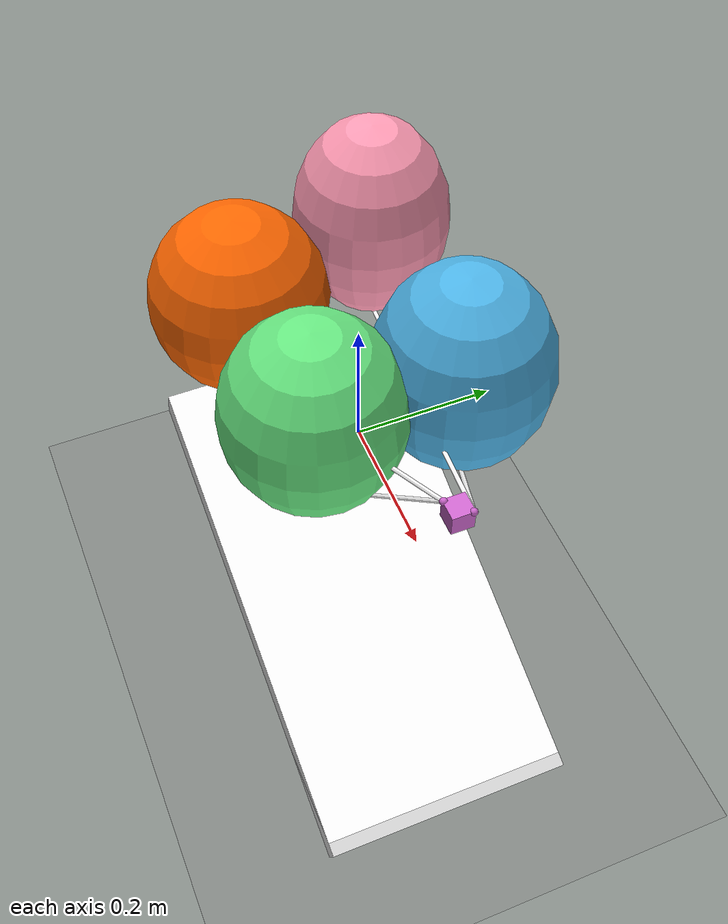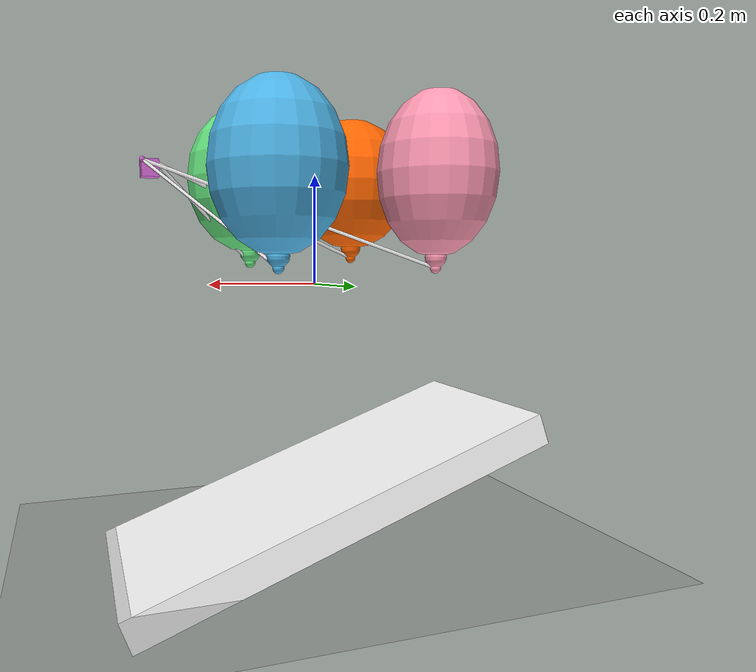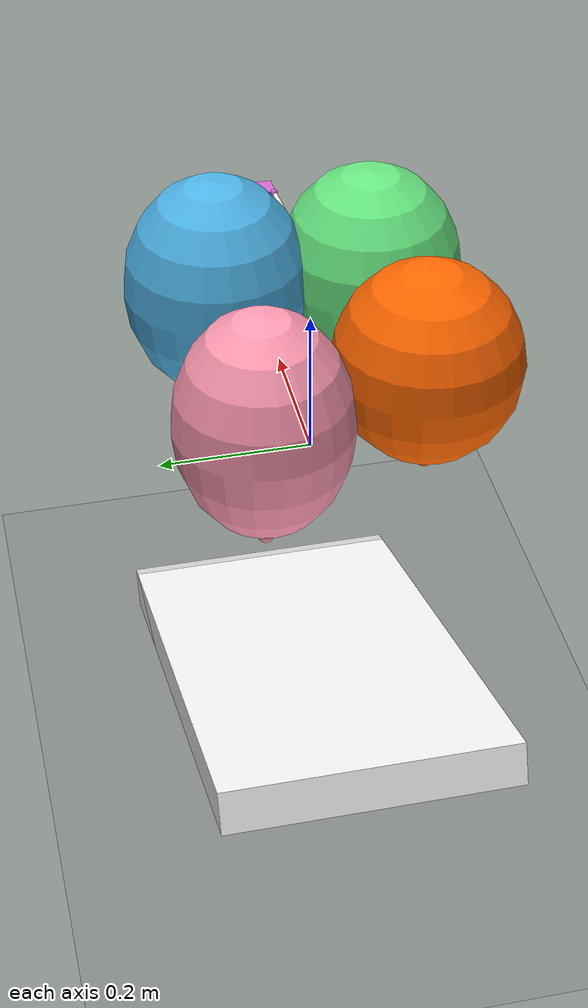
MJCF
<mujoco>
  <option density="1.204" viscosity="1.8e-5" integrator="implicit"/>

  <visual>
    <global elevation="-10"/>
  </visual>

  <default>
    <tendon limited="true" width="0.003" rgba="1 1 1 1"/>
    <geom friction=".2"/>
    <default class="weight">
      <geom rgba=".8 .4 .8 1"/>
      <site rgba=".8 .4 .8 1"/>
    </default>
    <default class="balloon">
      <!--
        0.167 is the MKS density of helium at room temperature.
        Note this does not take into account the mass of the rubber,
        which is likely not insignificant.
      -->
      <geom density="0.167" fluidshape="ellipsoid"/>
      <default class="pink">
        <geom rgba="1 .6 .7 1"/>
        <site rgba="1 .6 .7 1"/>
      </default>
      <default class="blue">
        <geom rgba=".3 .7 .9 1"/>
        <site rgba=".3 .7 .9 1"/>
      </default>
      <default class="green">
        <geom rgba=".4 .9 .5 1"/>
        <site rgba=".4 .9 .5 1"/>
      </default>
      <default class="orange">
        <geom rgba="1 .4 0 1"/>
        <site rgba="1 .4 0 1"/>
      </default>
    </default>
  </default>

  <asset>
    <texture name="grid" type="2d" builtin="checker" width="512" height="512" rgb2="0 0 0" rgb1="1 1 1"/>
    <material name="grid" texture="grid" texrepeat="2 2" texuniform="true" reflectance=".6"/>
  </asset>

  <worldbody>
    <geom name="ground" type="plane" size="5 5 .05" pos="0 0 -.5" material="grid"/>
    <geom name="ramp" type="box" size=".4 .2 .03" pos="0 0 -.4" euler="0 20 0" rgba="1 1 1 1"/>

    <body name="weight" childclass="weight" pos=".3 0 .2">
      <freejoint/>
      <light pos="1 0 3" dir="-1 0 -3" mode="trackcom"/>
      <light pos="-1 0 3" dir="1 0 -3" mode="trackcom"/>
      <!-- The mass of the weight was chosen to be slightly bigger than the total buoyancy of the balloons. -->
      <geom name="weight" type="box" size=".015 .015 .015" mass=".0347"/>
      <site name="weight1" pos=" .013  .013 .013" size="0.005"/>
      <site name="weight2" pos="-.013 -.013 .013" size="0.005"/>
    </body>

    <!-- The gravcomp value of 7.2 is the ratio of air and helium densities at room temperature. -->
    <body name="pink" gravcomp="7.2" pos="-.2 .1 .2" childclass="pink">
      <freejoint />
      <geom name="pink" type="ellipsoid" size=".11 .11 .15"/>
      <geom name="pink_knot" pos="0 0 -.15" size=".02"/>
      <site name="pink" pos="0 0 -.17" size="0.01"/>
    </body>

    <body name="blue" gravcomp="7.2" pos=".1 .1 .2" childclass="blue">
      <freejoint />
      <geom name="blue" type="ellipsoid" size=".12 .12 .15"/>
      <geom name="blue_knot" pos="0 0 -.15" size=".02"/>
      <site name="blue" pos="0 0 -.17" size="0.01"/>
    </body>

    <body name="green" gravcomp="7.2" pos=".1 -.1 .2" childclass="green">
      <freejoint />
      <geom name="green" type="ellipsoid" size=".12 .12 .14"/>
      <geom name="green_knot" pos="0 0 -.14" size=".02"/>
      <site name="green" pos="0 0 -.16" size="0.01"/>
    </body>

    <body name="orange" gravcomp="7.2" pos="-.12 -.12 .2" childclass="orange">
      <freejoint />
      <geom name="orange" type="ellipsoid" size=".12 .12 .13"/>
      <geom name="orange_knot" pos="0 0 -.13" size=".02"/>
      <site name="orange" pos="0 0 -.15" size="0.01"/>
    </body>
  </worldbody>

  <tendon>
    <spatial range="0 0.6">
      <site site="pink"/>
      <site site="weight1"/>
    </spatial>
    <spatial range="0 0.4">
      <site site="blue"/>
      <site site="weight1"/>
    </spatial>
    <spatial range="0 0.3">
      <site site="green"/>
      <site site="weight2"/>
    </spatial>
    <spatial range="0 0.1">
      <site site="orange"/>
      <site site="weight2"/>
    </spatial>
  </tendon>
</mujoco>
